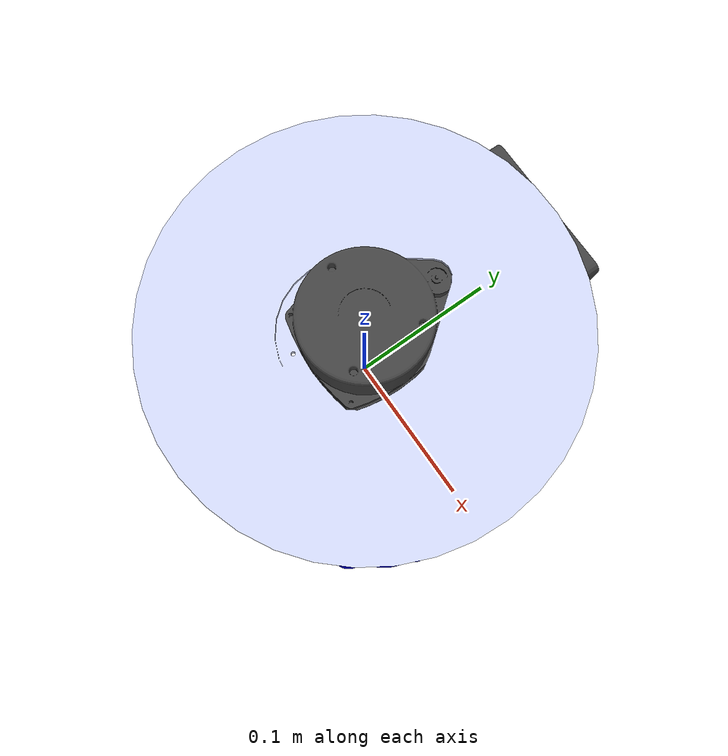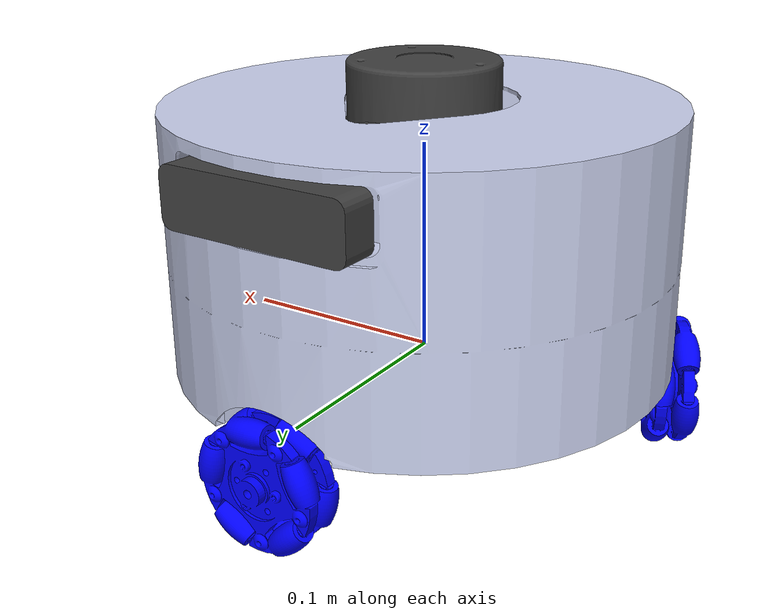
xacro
<?xml version="1.0"?>
<robot xmlns:xacro="http://www.ros.org/wiki/xacro" name="ausrabot">
  <link name="robot_footprint" />
  <joint name="dummy_joint" type="fixed">
      <parent link="robot_footprint"/>
      <child link="base_link"/>
      <origin xyz="0 0 0" rpy="0 0 0"/>
  </joint>
  <link
    name="base_link">
    <inertial>
      <origin
        xyz="0.000132358596962433 0.0107784527153615 0.0455578201137751"
        rpy="0 0 0" />
      <mass
        value="0.545316432015797" />
      <inertia
        ixx="0.00232840648283892"
        ixy="7.82952052633134E-08"
        ixz="-2.35921291442106E-08"
        iyy="0.00246732309842302"
        iyz="-2.45394203695068E-06"
        izz="0.00451259615315152" />
    </inertial>
    <visual>
      <origin
        xyz="0 0 0"
        rpy="0 0 0" />
      <geometry>
        <mesh
          filename="package://ausrabot_description/meshes/base_link.STL" />
      </geometry>
      <material
        name="">
        <color
          rgba="0.792156862745098 0.819607843137255 0.933333333333333 1" />
      </material>
    </visual>
    <collision>
      <origin
        xyz="0 0 0"
        rpy="0 0 0" />
      <geometry>
        <mesh
          filename="package://ausrabot_description/meshes/base_link.STL" />
      </geometry>
    </collision>
  </link>
  <link
    name="wheel_1">
    <inertial>
      <origin
        xyz="-6.11585138939009E-07 2.40519083084118E-06 0.00687917878282576"
        rpy="0 0 0" />
      <mass
        value="0.037694823031467" />
      <inertia
        ixx="3.0972076096957E-06"
        ixy="2.84246335131892E-11"
        ixz="-2.16478688549662E-10"
        iyy="3.09696234654175E-06"
        iyz="8.51072894756962E-10"
        izz="5.34864718246412E-06" />
    </inertial>
    <visual>
      <origin
        xyz="0 0 0"
        rpy="0 0 0" />
      <geometry>
        <mesh
          filename="package://ausrabot_description/meshes/wheel_1.STL" />
      </geometry>
      <material
        name="">
        <color
          rgba="0.0 0.0 1.0 1" />
      </material>
    </visual>
    <collision>
      <origin
        xyz="0 0 0"
        rpy="0 0 0" />
      <geometry>
          <cylinder radius="0.034" length="0.015"/>
      </geometry>
      <surface>
        <friction>
          <ode>
            <mu>1.0</mu>
            <mu2>1.0</mu2>
          </ode>
        </friction>
      </surface>
    </collision>
  </link>
  <joint
    name="joint_1"
    type="continuous">
    <origin
      xyz="0.00131071109492098 0.110453635935089 -0.0161803398874989"
      rpy="1.5707963267949 0 3.12946941504743" />
    <parent
      link="base_link" />
    <child
      link="wheel_1" />
    <axis
      xyz="0 0 1" />
  </joint>
  <link
    name="wheel_2">
    <inertial>
      <origin
        xyz="-2.22775634618061E-06 -1.09358984268573E-06 0.006879178822061"
        rpy="0 0 0" />
      <mass
        value="0.0376948232954181" />
      <inertia
        ixx="3.09702282374251E-06"
        ixy="-3.32677650778434E-11"
        ixz="-7.88279016321689E-10"
        iyy="3.09712667239217E-06"
        iyz="-3.87033927352786E-10"
        izz="5.34862673117426E-06" />
    </inertial>
    <visual>
      <origin
        xyz="0 0 0"
        rpy="0 0 0" />
      <geometry>
        <mesh
          filename="package://ausrabot_description/meshes/wheel_2.STL" />
      </geometry>
      <material
        name="">
        <color
          rgba="0.0 0.0 1.0 1" />
      </material>
    </visual>
    <collision>
      <origin
        xyz="0 0 0"
        rpy="0 0 0" />
      <geometry>
          <cylinder radius="0.034" length="0.015"/>
      </geometry>
      <surface>
        <friction>
          <ode>
            <mu>1.0</mu>
            <mu2>1.0</mu2>
          </ode>
        </friction>
      </surface>
    </collision>
  </link>
  <joint
    name="joint_2"
    type="continuous">
    <origin
      xyz="-0.0963609169452294 -0.0540793874249231 -0.016180339887499"
      rpy="1.5707963267949 0 -1.05932078973896" />
    <parent
      link="base_link" />
    <child
      link="wheel_2" />
    <axis
      xyz="0 0 1" />
  </joint>
  <link
    name="wheel_3">
    <inertial>
      <origin
        xyz="2.39002105834052E-06 6.6831361357142E-07 0.00687917877739805"
        rpy="0 0 0" />
      <mass
        value="0.0376948233023577" />
      <inertia
        ixx="3.09710830531407E-06"
        ixy="8.8846112421192E-12"
        ixz="8.45711274919436E-10"
        iyy="3.0971477806935E-06"
        iyz="2.36549362165485E-10"
        izz="5.34873332719162E-06" />
    </inertial>
    <visual>
      <origin
        xyz="0 0 0"
        rpy="0 0 0" />
      <geometry>
        <mesh
          filename="package://ausrabot_description/meshes/wheel_3.STL" />
      </geometry>
      <material
        name="">
        <color
          rgba="0.0 0.0 1.0 1" />
      </material>
    </visual>
    <collision>
      <origin
        xyz="0 0 0"
        rpy="0 0 0" />
      <geometry>
          <cylinder radius="0.034" length="0.015"/>
      </geometry>
      <surface>
        <friction>
          <ode>
            <mu>1.0</mu>
            <mu2>1.0</mu2>
          </ode>
        </friction>
      </surface>
    </collision>
  </link>
    <joint
    name="joint_3"
    type="continuous">
    <origin
      xyz="0.0949646750660746 -0.0563989868566714 -0.016180339887499"
      rpy="1.5707963267949 0 1.03507431265423" />
    <parent
      link="base_link" />
    <child
      link="wheel_3" />
    <axis
      xyz="0 0 1" />
  </joint>
  <link
    name="lidar">
    <inertial>
      <origin
        xyz="-0.000173277491394453 -0.00676662791697095 0.00557928889827741"
        rpy="0 0 0" />
      <mass
        value="0.171177012505295" />
      <inertia
        ixx="0.000124253941113825"
        ixy="-4.38664000869312E-07"
        ixz="-6.40588163757229E-07"
        iyy="7.95393375273759E-05"
        iyz="-2.02744127539845E-05"
        izz="0.000141905084169328" />
    </inertial>
    <visual>
      <origin
        xyz="0 0 0"
        rpy="0 0 0" />
      <geometry>
        <mesh
          filename="package://ausrabot_description/meshes/lidar.STL" />
      </geometry>
      <material
        name="">
        <color
          rgba="0.250980392156863 0.250980392156863 0.250980392156863 1" />
      </material>
    </visual>
    <collision>
      <origin
        xyz="0 0 0"
        rpy="0 0 0" />
      <geometry>
        <mesh
          filename="package://ausrabot_description/meshes/lidar.STL" />
      </geometry>
    </collision>
  </link>
  <joint
    name="lidar_joint"
    type="fixed">
    <origin
      xyz="-2.85102614102555E-05 0 0.110598095199185"
      rpy="0 0 3.14159265358979" />
    <parent
      link="base_link" />
    <child
      link="lidar" />
    <axis
      xyz="0 0 0" />
  </joint>
  <link
    name="oak_camera">
    <inertial>
      <origin
        xyz="2.77555756156289E-17 2.38524477946811E-18 -0.00860000000000001"
        rpy="0 0 0" />
      <mass
        value="0.0417182941210436" />
      <inertia
        ixx="2.88248605870479E-05"
        ixy="-7.46277402243113E-19"
        ixz="3.67148828118008E-22"
        iyy="3.55432167309084E-06"
        iyz="2.8124140826834E-22"
        izz="3.03221922380105E-05" />
    </inertial>
    <visual>
      <origin
        xyz="0 0 0"
        rpy="0 0 0" />
      <geometry>
        <mesh
          filename="package://ausrabot_description/meshes/oak_camera.STL" />
      </geometry>
      <material
        name="">
        <color
          rgba="0.250980392156863 0.250980392156863 0.250980392156863 1" />
      </material>
    </visual>
    <collision>
      <origin
        xyz="0 0 0"
        rpy="0 0 0" />
      <geometry>
        <mesh
          filename="package://ausrabot_description/meshes/oak_camera.STL" />
      </geometry>
    </collision>
  </link>
  <joint
    name="oak_joint"
    type="fixed">
    <origin
      xyz="0.000808669644363073 0.103689225067774 0.098888095199185"
      rpy="1.55867308825253 -1.5707963267949 0" />
    <parent
      link="base_link" />
    <child
      link="oak_camera" />
    <axis
      xyz="0 0 0" />
  </joint>

  <ros2_control name="GazeboSystem" type="system">
    <hardware>
      <plugin>gz_ros2_control/GazeboSimSystem</plugin>
    </hardware>

    <joint name="joint_1">
      <command_interface name="velocity">
        <param name="min">-10</param>
        <param name="max">10</param>
      </command_interface>
      <state_interface name="velocity"/>
      <state_interface name="position"/>
    </joint>
    <joint name="joint_2">
      <command_interface name="velocity">
        <param name="min">-10</param>
        <param name="max">10</param>
      </command_interface>
      <state_interface name="velocity"/>
      <state_interface name="position"/>
    </joint>
    <joint name="joint_3">
      <command_interface name="velocity">
        <param name="min">-10</param>
        <param name="max">10</param>
      </command_interface>
      <state_interface name="velocity"/>
      <state_interface name="position"/>
    </joint>
  </ros2_control>

</robot>
